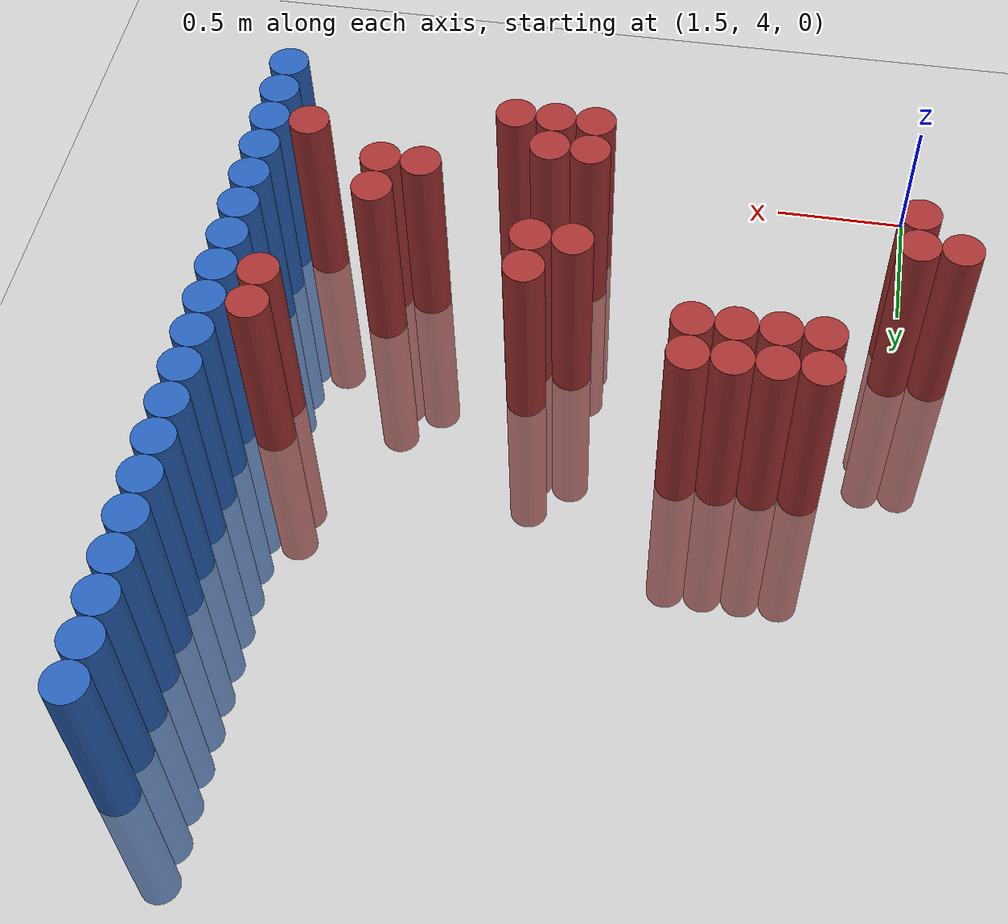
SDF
<sdf version="1.6">
 <world name="default">
  <model name="ground_plane">
   <static>1</static>
   <link name="link">
    <collision name="collision">
     <geometry><plane><normal>0 0 1</normal><size>100 100</size></plane></geometry>
     <surface><friction><ode><mu>100</mu><mu2>50</mu2></ode></friction></surface>
    </collision>
    <visual name="visual">
     <cast_shadows>0</cast_shadows>
     <geometry><plane><normal>0 0 1</normal><size>100 100</size></plane></geometry>
     <material>
      <script><uri>file://media/materials/scripts/gazebo.material</uri><name>Gazebo/Grey</name></script>
     </material>
    </visual>
   </link>
  </model>
  <model name="unit_cylinder_172">
   <static>1</static>
   <pose>3.925000 4.375000 0.000000 0.000000 0.000000 0.000000</pose>
   <link name="link">
    <inertial>
     <mass>1</mass>
     <inertia><ixx>0.145833</ixx><ixy>0</ixy><ixz>0</ixz><iyy>0.145833</iyy><iyz>0</iyz><izz>0.125</izz></inertia>
    </inertial>
    <collision name="collision">
     <geometry><cylinder><radius>0.075000</radius><length>1.5</length></cylinder></geometry>
    </collision>
    <visual name="visual">
     <geometry><cylinder><radius>0.075000</radius><length>1.5</length></cylinder></geometry>
     <material>
      <ambient>0.152000 0.379000 0.720000 1</ambient>
      <diffuse>0.152000 0.379000 0.720000 1</diffuse>
     </material>
     <material>
      <script><name>Gazebo/Grey</name><uri>file://media/materials/scripts/gazebo.material</uri></script>
     </material>
    </visual>
   </link>
  </model>
  <model name="unit_cylinder_174">
   <static>1</static>
   <pose>3.925000 4.525000 0.000000 0.000000 0.000000 0.000000</pose>
   <link name="link">
    <inertial>
     <mass>1</mass>
     <inertia><ixx>0.145833</ixx><ixy>0</ixy><ixz>0</ixz><iyy>0.145833</iyy><iyz>0</iyz><izz>0.125</izz></inertia>
    </inertial>
    <collision name="collision">
     <geometry><cylinder><radius>0.075000</radius><length>1.5</length></cylinder></geometry>
    </collision>
    <visual name="visual">
     <geometry><cylinder><radius>0.075000</radius><length>1.5</length></cylinder></geometry>
     <material>
      <ambient>0.152000 0.379000 0.720000 1</ambient>
      <diffuse>0.152000 0.379000 0.720000 1</diffuse>
     </material>
     <material>
      <script><name>Gazebo/Grey</name><uri>file://media/materials/scripts/gazebo.material</uri></script>
     </material>
    </visual>
   </link>
  </model>
  <model name="unit_cylinder_176">
   <static>1</static>
   <pose>3.925000 4.675000 0.000000 0.000000 0.000000 0.000000</pose>
   <link name="link">
    <inertial>
     <mass>1</mass>
     <inertia><ixx>0.145833</ixx><ixy>0</ixy><ixz>0</ixz><iyy>0.145833</iyy><iyz>0</iyz><izz>0.125</izz></inertia>
    </inertial>
    <collision name="collision">
     <geometry><cylinder><radius>0.075000</radius><length>1.5</length></cylinder></geometry>
    </collision>
    <visual name="visual">
     <geometry><cylinder><radius>0.075000</radius><length>1.5</length></cylinder></geometry>
     <material>
      <ambient>0.152000 0.379000 0.720000 1</ambient>
      <diffuse>0.152000 0.379000 0.720000 1</diffuse>
     </material>
     <material>
      <script><name>Gazebo/Grey</name><uri>file://media/materials/scripts/gazebo.material</uri></script>
     </material>
    </visual>
   </link>
  </model>
  <model name="unit_cylinder_178">
   <static>1</static>
   <pose>3.925000 4.825000 0.000000 0.000000 0.000000 0.000000</pose>
   <link name="link">
    <inertial>
     <mass>1</mass>
     <inertia><ixx>0.145833</ixx><ixy>0</ixy><ixz>0</ixz><iyy>0.145833</iyy><iyz>0</iyz><izz>0.125</izz></inertia>
    </inertial>
    <collision name="collision">
     <geometry><cylinder><radius>0.075000</radius><length>1.5</length></cylinder></geometry>
    </collision>
    <visual name="visual">
     <geometry><cylinder><radius>0.075000</radius><length>1.5</length></cylinder></geometry>
     <material>
      <ambient>0.152000 0.379000 0.720000 1</ambient>
      <diffuse>0.152000 0.379000 0.720000 1</diffuse>
     </material>
     <material>
      <script><name>Gazebo/Grey</name><uri>file://media/materials/scripts/gazebo.material</uri></script>
     </material>
    </visual>
   </link>
  </model>
  <model name="unit_cylinder_180">
   <static>1</static>
   <pose>3.925000 4.975000 0.000000 0.000000 0.000000 0.000000</pose>
   <link name="link">
    <inertial>
     <mass>1</mass>
     <inertia><ixx>0.145833</ixx><ixy>0</ixy><ixz>0</ixz><iyy>0.145833</iyy><iyz>0</iyz><izz>0.125</izz></inertia>
    </inertial>
    <collision name="collision">
     <geometry><cylinder><radius>0.075000</radius><length>1.5</length></cylinder></geometry>
    </collision>
    <visual name="visual">
     <geometry><cylinder><radius>0.075000</radius><length>1.5</length></cylinder></geometry>
     <material>
      <ambient>0.152000 0.379000 0.720000 1</ambient>
      <diffuse>0.152000 0.379000 0.720000 1</diffuse>
     </material>
     <material>
      <script><name>Gazebo/Grey</name><uri>file://media/materials/scripts/gazebo.material</uri></script>
     </material>
    </visual>
   </link>
  </model>
  <model name="unit_cylinder_182">
   <static>1</static>
   <pose>3.925000 5.125000 0.000000 0.000000 0.000000 0.000000</pose>
   <link name="link">
    <inertial>
     <mass>1</mass>
     <inertia><ixx>0.145833</ixx><ixy>0</ixy><ixz>0</ixz><iyy>0.145833</iyy><iyz>0</iyz><izz>0.125</izz></inertia>
    </inertial>
    <collision name="collision">
     <geometry><cylinder><radius>0.075000</radius><length>1.5</length></cylinder></geometry>
    </collision>
    <visual name="visual">
     <geometry><cylinder><radius>0.075000</radius><length>1.5</length></cylinder></geometry>
     <material>
      <ambient>0.152000 0.379000 0.720000 1</ambient>
      <diffuse>0.152000 0.379000 0.720000 1</diffuse>
     </material>
     <material>
      <script><name>Gazebo/Grey</name><uri>file://media/materials/scripts/gazebo.material</uri></script>
     </material>
    </visual>
   </link>
  </model>
  <model name="unit_cylinder_184">
   <static>1</static>
   <pose>3.925000 5.275000 0.000000 0.000000 0.000000 0.000000</pose>
   <link name="link">
    <inertial>
     <mass>1</mass>
     <inertia><ixx>0.145833</ixx><ixy>0</ixy><ixz>0</ixz><iyy>0.145833</iyy><iyz>0</iyz><izz>0.125</izz></inertia>
    </inertial>
    <collision name="collision">
     <geometry><cylinder><radius>0.075000</radius><length>1.5</length></cylinder></geometry>
    </collision>
    <visual name="visual">
     <geometry><cylinder><radius>0.075000</radius><length>1.5</length></cylinder></geometry>
     <material>
      <ambient>0.152000 0.379000 0.720000 1</ambient>
      <diffuse>0.152000 0.379000 0.720000 1</diffuse>
     </material>
     <material>
      <script><name>Gazebo/Grey</name><uri>file://media/materials/scripts/gazebo.material</uri></script>
     </material>
    </visual>
   </link>
  </model>
  <model name="unit_cylinder_186">
   <static>1</static>
   <pose>3.925000 5.425000 0.000000 0.000000 0.000000 0.000000</pose>
   <link name="link">
    <inertial>
     <mass>1</mass>
     <inertia><ixx>0.145833</ixx><ixy>0</ixy><ixz>0</ixz><iyy>0.145833</iyy><iyz>0</iyz><izz>0.125</izz></inertia>
    </inertial>
    <collision name="collision">
     <geometry><cylinder><radius>0.075000</radius><length>1.5</length></cylinder></geometry>
    </collision>
    <visual name="visual">
     <geometry><cylinder><radius>0.075000</radius><length>1.5</length></cylinder></geometry>
     <material>
      <ambient>0.152000 0.379000 0.720000 1</ambient>
      <diffuse>0.152000 0.379000 0.720000 1</diffuse>
     </material>
     <material>
      <script><name>Gazebo/Grey</name><uri>file://media/materials/scripts/gazebo.material</uri></script>
     </material>
    </visual>
   </link>
  </model>
  <model name="unit_cylinder_188">
   <static>1</static>
   <pose>3.925000 5.575000 0.000000 0.000000 0.000000 0.000000</pose>
   <link name="link">
    <inertial>
     <mass>1</mass>
     <inertia><ixx>0.145833</ixx><ixy>0</ixy><ixz>0</ixz><iyy>0.145833</iyy><iyz>0</iyz><izz>0.125</izz></inertia>
    </inertial>
    <collision name="collision">
     <geometry><cylinder><radius>0.075000</radius><length>1.5</length></cylinder></geometry>
    </collision>
    <visual name="visual">
     <geometry><cylinder><radius>0.075000</radius><length>1.5</length></cylinder></geometry>
     <material>
      <ambient>0.152000 0.379000 0.720000 1</ambient>
      <diffuse>0.152000 0.379000 0.720000 1</diffuse>
     </material>
     <material>
      <script><name>Gazebo/Grey</name><uri>file://media/materials/scripts/gazebo.material</uri></script>
     </material>
    </visual>
   </link>
  </model>
  <model name="unit_cylinder_190">
   <static>1</static>
   <pose>3.925000 5.725000 0.000000 0.000000 0.000000 0.000000</pose>
   <link name="link">
    <inertial>
     <mass>1</mass>
     <inertia><ixx>0.145833</ixx><ixy>0</ixy><ixz>0</ixz><iyy>0.145833</iyy><iyz>0</iyz><izz>0.125</izz></inertia>
    </inertial>
    <collision name="collision">
     <geometry><cylinder><radius>0.075000</radius><length>1.5</length></cylinder></geometry>
    </collision>
    <visual name="visual">
     <geometry><cylinder><radius>0.075000</radius><length>1.5</length></cylinder></geometry>
     <material>
      <ambient>0.152000 0.379000 0.720000 1</ambient>
      <diffuse>0.152000 0.379000 0.720000 1</diffuse>
     </material>
     <material>
      <script><name>Gazebo/Grey</name><uri>file://media/materials/scripts/gazebo.material</uri></script>
     </material>
    </visual>
   </link>
  </model>
  <model name="unit_cylinder_192">
   <static>1</static>
   <pose>3.925000 5.875000 0.000000 0.000000 0.000000 0.000000</pose>
   <link name="link">
    <inertial>
     <mass>1</mass>
     <inertia><ixx>0.145833</ixx><ixy>0</ixy><ixz>0</ixz><iyy>0.145833</iyy><iyz>0</iyz><izz>0.125</izz></inertia>
    </inertial>
    <collision name="collision">
     <geometry><cylinder><radius>0.075000</radius><length>1.5</length></cylinder></geometry>
    </collision>
    <visual name="visual">
     <geometry><cylinder><radius>0.075000</radius><length>1.5</length></cylinder></geometry>
     <material>
      <ambient>0.152000 0.379000 0.720000 1</ambient>
      <diffuse>0.152000 0.379000 0.720000 1</diffuse>
     </material>
     <material>
      <script><name>Gazebo/Grey</name><uri>file://media/materials/scripts/gazebo.material</uri></script>
     </material>
    </visual>
   </link>
  </model>
  <model name="unit_cylinder_194">
   <static>1</static>
   <pose>3.925000 6.025000 0.000000 0.000000 0.000000 0.000000</pose>
   <link name="link">
    <inertial>
     <mass>1</mass>
     <inertia><ixx>0.145833</ixx><ixy>0</ixy><ixz>0</ixz><iyy>0.145833</iyy><iyz>0</iyz><izz>0.125</izz></inertia>
    </inertial>
    <collision name="collision">
     <geometry><cylinder><radius>0.075000</radius><length>1.5</length></cylinder></geometry>
    </collision>
    <visual name="visual">
     <geometry><cylinder><radius>0.075000</radius><length>1.5</length></cylinder></geometry>
     <material>
      <ambient>0.152000 0.379000 0.720000 1</ambient>
      <diffuse>0.152000 0.379000 0.720000 1</diffuse>
     </material>
     <material>
      <script><name>Gazebo/Grey</name><uri>file://media/materials/scripts/gazebo.material</uri></script>
     </material>
    </visual>
   </link>
  </model>
  <model name="unit_cylinder_196">
   <static>1</static>
   <pose>3.925000 6.175000 0.000000 0.000000 0.000000 0.000000</pose>
   <link name="link">
    <inertial>
     <mass>1</mass>
     <inertia><ixx>0.145833</ixx><ixy>0</ixy><ixz>0</ixz><iyy>0.145833</iyy><iyz>0</iyz><izz>0.125</izz></inertia>
    </inertial>
    <collision name="collision">
     <geometry><cylinder><radius>0.075000</radius><length>1.5</length></cylinder></geometry>
    </collision>
    <visual name="visual">
     <geometry><cylinder><radius>0.075000</radius><length>1.5</length></cylinder></geometry>
     <material>
      <ambient>0.152000 0.379000 0.720000 1</ambient>
      <diffuse>0.152000 0.379000 0.720000 1</diffuse>
     </material>
     <material>
      <script><name>Gazebo/Grey</name><uri>file://media/materials/scripts/gazebo.material</uri></script>
     </material>
    </visual>
   </link>
  </model>
  <model name="unit_cylinder_198">
   <static>1</static>
   <pose>3.925000 6.325000 0.000000 0.000000 0.000000 0.000000</pose>
   <link name="link">
    <inertial>
     <mass>1</mass>
     <inertia><ixx>0.145833</ixx><ixy>0</ixy><ixz>0</ixz><iyy>0.145833</iyy><iyz>0</iyz><izz>0.125</izz></inertia>
    </inertial>
    <collision name="collision">
     <geometry><cylinder><radius>0.075000</radius><length>1.5</length></cylinder></geometry>
    </collision>
    <visual name="visual">
     <geometry><cylinder><radius>0.075000</radius><length>1.5</length></cylinder></geometry>
     <material>
      <ambient>0.152000 0.379000 0.720000 1</ambient>
      <diffuse>0.152000 0.379000 0.720000 1</diffuse>
     </material>
     <material>
      <script><name>Gazebo/Grey</name><uri>file://media/materials/scripts/gazebo.material</uri></script>
     </material>
    </visual>
   </link>
  </model>
  <model name="unit_cylinder_200">
   <static>1</static>
   <pose>3.925000 6.475000 0.000000 0.000000 0.000000 0.000000</pose>
   <link name="link">
    <inertial>
     <mass>1</mass>
     <inertia><ixx>0.145833</ixx><ixy>0</ixy><ixz>0</ixz><iyy>0.145833</iyy><iyz>0</iyz><izz>0.125</izz></inertia>
    </inertial>
    <collision name="collision">
     <geometry><cylinder><radius>0.075000</radius><length>1.5</length></cylinder></geometry>
    </collision>
    <visual name="visual">
     <geometry><cylinder><radius>0.075000</radius><length>1.5</length></cylinder></geometry>
     <material>
      <ambient>0.152000 0.379000 0.720000 1</ambient>
      <diffuse>0.152000 0.379000 0.720000 1</diffuse>
     </material>
     <material>
      <script><name>Gazebo/Grey</name><uri>file://media/materials/scripts/gazebo.material</uri></script>
     </material>
    </visual>
   </link>
  </model>
  <model name="unit_cylinder_202">
   <static>1</static>
   <pose>3.925000 6.625000 0.000000 0.000000 0.000000 0.000000</pose>
   <link name="link">
    <inertial>
     <mass>1</mass>
     <inertia><ixx>0.145833</ixx><ixy>0</ixy><ixz>0</ixz><iyy>0.145833</iyy><iyz>0</iyz><izz>0.125</izz></inertia>
    </inertial>
    <collision name="collision">
     <geometry><cylinder><radius>0.075000</radius><length>1.5</length></cylinder></geometry>
    </collision>
    <visual name="visual">
     <geometry><cylinder><radius>0.075000</radius><length>1.5</length></cylinder></geometry>
     <material>
      <ambient>0.152000 0.379000 0.720000 1</ambient>
      <diffuse>0.152000 0.379000 0.720000 1</diffuse>
     </material>
     <material>
      <script><name>Gazebo/Grey</name><uri>file://media/materials/scripts/gazebo.material</uri></script>
     </material>
    </visual>
   </link>
  </model>
  <model name="unit_cylinder_204">
   <static>1</static>
   <pose>3.925000 6.775000 0.000000 0.000000 0.000000 0.000000</pose>
   <link name="link">
    <inertial>
     <mass>1</mass>
     <inertia><ixx>0.145833</ixx><ixy>0</ixy><ixz>0</ixz><iyy>0.145833</iyy><iyz>0</iyz><izz>0.125</izz></inertia>
    </inertial>
    <collision name="collision">
     <geometry><cylinder><radius>0.075000</radius><length>1.5</length></cylinder></geometry>
    </collision>
    <visual name="visual">
     <geometry><cylinder><radius>0.075000</radius><length>1.5</length></cylinder></geometry>
     <material>
      <ambient>0.152000 0.379000 0.720000 1</ambient>
      <diffuse>0.152000 0.379000 0.720000 1</diffuse>
     </material>
     <material>
      <script><name>Gazebo/Grey</name><uri>file://media/materials/scripts/gazebo.material</uri></script>
     </material>
    </visual>
   </link>
  </model>
  <model name="unit_cylinder_206">
   <static>1</static>
   <pose>3.925000 6.925000 0.000000 0.000000 0.000000 0.000000</pose>
   <link name="link">
    <inertial>
     <mass>1</mass>
     <inertia><ixx>0.145833</ixx><ixy>0</ixy><ixz>0</ixz><iyy>0.145833</iyy><iyz>0</iyz><izz>0.125</izz></inertia>
    </inertial>
    <collision name="collision">
     <geometry><cylinder><radius>0.075000</radius><length>1.5</length></cylinder></geometry>
    </collision>
    <visual name="visual">
     <geometry><cylinder><radius>0.075000</radius><length>1.5</length></cylinder></geometry>
     <material>
      <ambient>0.152000 0.379000 0.720000 1</ambient>
      <diffuse>0.152000 0.379000 0.720000 1</diffuse>
     </material>
     <material>
      <script><name>Gazebo/Grey</name><uri>file://media/materials/scripts/gazebo.material</uri></script>
     </material>
    </visual>
   </link>
  </model>
  <model name="unit_cylinder_428">
   <static>1</static>
   <pose>1.375000 4.825000 0.000000 0.000000 0.000000 0.000000</pose>
   <link name="link">
    <inertial>
     <mass>1</mass>
     <inertia><ixx>0.145833</ixx><ixy>0</ixy><ixz>0</ixz><iyy>0.145833</iyy><iyz>0</iyz><izz>0.125</izz></inertia>
    </inertial>
    <collision name="collision">
     <geometry><cylinder><radius>0.075000</radius><length>1.5</length></cylinder></geometry>
    </collision>
    <visual name="visual">
     <geometry><cylinder><radius>0.075000</radius><length>1.5</length></cylinder></geometry>
     <material>
      <ambient>0.648000 0.192000 0.192000 1</ambient>
      <diffuse>0.648000 0.192000 0.192000 1</diffuse>
     </material>
     <material>
      <script><name>Gazebo/Grey</name><uri>file://media/materials/scripts/gazebo.material</uri></script>
     </material>
    </visual>
   </link>
  </model>
  <model name="unit_cylinder_436">
   <static>1</static>
   <pose>1.525000 4.675000 0.000000 0.000000 0.000000 0.000000</pose>
   <link name="link">
    <inertial>
     <mass>1</mass>
     <inertia><ixx>0.145833</ixx><ixy>0</ixy><ixz>0</ixz><iyy>0.145833</iyy><iyz>0</iyz><izz>0.125</izz></inertia>
    </inertial>
    <collision name="collision">
     <geometry><cylinder><radius>0.075000</radius><length>1.5</length></cylinder></geometry>
    </collision>
    <visual name="visual">
     <geometry><cylinder><radius>0.075000</radius><length>1.5</length></cylinder></geometry>
     <material>
      <ambient>0.648000 0.192000 0.192000 1</ambient>
      <diffuse>0.648000 0.192000 0.192000 1</diffuse>
     </material>
     <material>
      <script><name>Gazebo/Grey</name><uri>file://media/materials/scripts/gazebo.material</uri></script>
     </material>
    </visual>
   </link>
  </model>
  <model name="unit_cylinder_437">
   <static>1</static>
   <pose>1.525000 4.825000 0.000000 0.000000 0.000000 0.000000</pose>
   <link name="link">
    <inertial>
     <mass>1</mass>
     <inertia><ixx>0.145833</ixx><ixy>0</ixy><ixz>0</ixz><iyy>0.145833</iyy><iyz>0</iyz><izz>0.125</izz></inertia>
    </inertial>
    <collision name="collision">
     <geometry><cylinder><radius>0.075000</radius><length>1.5</length></cylinder></geometry>
    </collision>
    <visual name="visual">
     <geometry><cylinder><radius>0.075000</radius><length>1.5</length></cylinder></geometry>
     <material>
      <ambient>0.648000 0.192000 0.192000 1</ambient>
      <diffuse>0.648000 0.192000 0.192000 1</diffuse>
     </material>
     <material>
      <script><name>Gazebo/Grey</name><uri>file://media/materials/scripts/gazebo.material</uri></script>
     </material>
    </visual>
   </link>
  </model>
  <model name="unit_cylinder_453">
   <static>1</static>
   <pose>1.825000 5.275000 0.000000 0.000000 0.000000 0.000000</pose>
   <link name="link">
    <inertial>
     <mass>1</mass>
     <inertia><ixx>0.145833</ixx><ixy>0</ixy><ixz>0</ixz><iyy>0.145833</iyy><iyz>0</iyz><izz>0.125</izz></inertia>
    </inertial>
    <collision name="collision">
     <geometry><cylinder><radius>0.075000</radius><length>1.5</length></cylinder></geometry>
    </collision>
    <visual name="visual">
     <geometry><cylinder><radius>0.075000</radius><length>1.5</length></cylinder></geometry>
     <material>
      <ambient>0.648000 0.192000 0.192000 1</ambient>
      <diffuse>0.648000 0.192000 0.192000 1</diffuse>
     </material>
     <material>
      <script><name>Gazebo/Grey</name><uri>file://media/materials/scripts/gazebo.material</uri></script>
     </material>
    </visual>
   </link>
  </model>
  <model name="unit_cylinder_454">
   <static>1</static>
   <pose>1.825000 5.425000 0.000000 0.000000 0.000000 0.000000</pose>
   <link name="link">
    <inertial>
     <mass>1</mass>
     <inertia><ixx>0.145833</ixx><ixy>0</ixy><ixz>0</ixz><iyy>0.145833</iyy><iyz>0</iyz><izz>0.125</izz></inertia>
    </inertial>
    <collision name="collision">
     <geometry><cylinder><radius>0.075000</radius><length>1.5</length></cylinder></geometry>
    </collision>
    <visual name="visual">
     <geometry><cylinder><radius>0.075000</radius><length>1.5</length></cylinder></geometry>
     <material>
      <ambient>0.648000 0.192000 0.192000 1</ambient>
      <diffuse>0.648000 0.192000 0.192000 1</diffuse>
     </material>
     <material>
      <script><name>Gazebo/Grey</name><uri>file://media/materials/scripts/gazebo.material</uri></script>
     </material>
    </visual>
   </link>
  </model>
  <model name="unit_cylinder_466">
   <static>1</static>
   <pose>1.975000 5.275000 0.000000 0.000000 0.000000 0.000000</pose>
   <link name="link">
    <inertial>
     <mass>1</mass>
     <inertia><ixx>0.145833</ixx><ixy>0</ixy><ixz>0</ixz><iyy>0.145833</iyy><iyz>0</iyz><izz>0.125</izz></inertia>
    </inertial>
    <collision name="collision">
     <geometry><cylinder><radius>0.075000</radius><length>1.5</length></cylinder></geometry>
    </collision>
    <visual name="visual">
     <geometry><cylinder><radius>0.075000</radius><length>1.5</length></cylinder></geometry>
     <material>
      <ambient>0.648000 0.192000 0.192000 1</ambient>
      <diffuse>0.648000 0.192000 0.192000 1</diffuse>
     </material>
     <material>
      <script><name>Gazebo/Grey</name><uri>file://media/materials/scripts/gazebo.material</uri></script>
     </material>
    </visual>
   </link>
  </model>
  <model name="unit_cylinder_467">
   <static>1</static>
   <pose>1.975000 5.425000 0.000000 0.000000 0.000000 0.000000</pose>
   <link name="link">
    <inertial>
     <mass>1</mass>
     <inertia><ixx>0.145833</ixx><ixy>0</ixy><ixz>0</ixz><iyy>0.145833</iyy><iyz>0</iyz><izz>0.125</izz></inertia>
    </inertial>
    <collision name="collision">
     <geometry><cylinder><radius>0.075000</radius><length>1.5</length></cylinder></geometry>
    </collision>
    <visual name="visual">
     <geometry><cylinder><radius>0.075000</radius><length>1.5</length></cylinder></geometry>
     <material>
      <ambient>0.648000 0.192000 0.192000 1</ambient>
      <diffuse>0.648000 0.192000 0.192000 1</diffuse>
     </material>
     <material>
      <script><name>Gazebo/Grey</name><uri>file://media/materials/scripts/gazebo.material</uri></script>
     </material>
    </visual>
   </link>
  </model>
  <model name="unit_cylinder_476">
   <static>1</static>
   <pose>2.125000 5.275000 0.000000 0.000000 0.000000 0.000000</pose>
   <link name="link">
    <inertial>
     <mass>1</mass>
     <inertia><ixx>0.145833</ixx><ixy>0</ixy><ixz>0</ixz><iyy>0.145833</iyy><iyz>0</iyz><izz>0.125</izz></inertia>
    </inertial>
    <collision name="collision">
     <geometry><cylinder><radius>0.075000</radius><length>1.5</length></cylinder></geometry>
    </collision>
    <visual name="visual">
     <geometry><cylinder><radius>0.075000</radius><length>1.5</length></cylinder></geometry>
     <material>
      <ambient>0.648000 0.192000 0.192000 1</ambient>
      <diffuse>0.648000 0.192000 0.192000 1</diffuse>
     </material>
     <material>
      <script><name>Gazebo/Grey</name><uri>file://media/materials/scripts/gazebo.material</uri></script>
     </material>
    </visual>
   </link>
  </model>
  <model name="unit_cylinder_477">
   <static>1</static>
   <pose>2.125000 5.425000 0.000000 0.000000 0.000000 0.000000</pose>
   <link name="link">
    <inertial>
     <mass>1</mass>
     <inertia><ixx>0.145833</ixx><ixy>0</ixy><ixz>0</ixz><iyy>0.145833</iyy><iyz>0</iyz><izz>0.125</izz></inertia>
    </inertial>
    <collision name="collision">
     <geometry><cylinder><radius>0.075000</radius><length>1.5</length></cylinder></geometry>
    </collision>
    <visual name="visual">
     <geometry><cylinder><radius>0.075000</radius><length>1.5</length></cylinder></geometry>
     <material>
      <ambient>0.648000 0.192000 0.192000 1</ambient>
      <diffuse>0.648000 0.192000 0.192000 1</diffuse>
     </material>
     <material>
      <script><name>Gazebo/Grey</name><uri>file://media/materials/scripts/gazebo.material</uri></script>
     </material>
    </visual>
   </link>
  </model>
  <model name="unit_cylinder_481">
   <static>1</static>
   <pose>2.275000 5.275000 0.000000 0.000000 0.000000 0.000000</pose>
   <link name="link">
    <inertial>
     <mass>1</mass>
     <inertia><ixx>0.145833</ixx><ixy>0</ixy><ixz>0</ixz><iyy>0.145833</iyy><iyz>0</iyz><izz>0.125</izz></inertia>
    </inertial>
    <collision name="collision">
     <geometry><cylinder><radius>0.075000</radius><length>1.5</length></cylinder></geometry>
    </collision>
    <visual name="visual">
     <geometry><cylinder><radius>0.075000</radius><length>1.5</length></cylinder></geometry>
     <material>
      <ambient>0.648000 0.192000 0.192000 1</ambient>
      <diffuse>0.648000 0.192000 0.192000 1</diffuse>
     </material>
     <material>
      <script><name>Gazebo/Grey</name><uri>file://media/materials/scripts/gazebo.material</uri></script>
     </material>
    </visual>
   </link>
  </model>
  <model name="unit_cylinder_482">
   <static>1</static>
   <pose>2.275000 5.425000 0.000000 0.000000 0.000000 0.000000</pose>
   <link name="link">
    <inertial>
     <mass>1</mass>
     <inertia><ixx>0.145833</ixx><ixy>0</ixy><ixz>0</ixz><iyy>0.145833</iyy><iyz>0</iyz><izz>0.125</izz></inertia>
    </inertial>
    <collision name="collision">
     <geometry><cylinder><radius>0.075000</radius><length>1.5</length></cylinder></geometry>
    </collision>
    <visual name="visual">
     <geometry><cylinder><radius>0.075000</radius><length>1.5</length></cylinder></geometry>
     <material>
      <ambient>0.648000 0.192000 0.192000 1</ambient>
      <diffuse>0.648000 0.192000 0.192000 1</diffuse>
     </material>
     <material>
      <script><name>Gazebo/Grey</name><uri>file://media/materials/scripts/gazebo.material</uri></script>
     </material>
    </visual>
   </link>
  </model>
  <model name="unit_cylinder_512">
   <static>1</static>
   <pose>2.725000 4.375000 0.000000 0.000000 0.000000 0.000000</pose>
   <link name="link">
    <inertial>
     <mass>1</mass>
     <inertia><ixx>0.145833</ixx><ixy>0</ixy><ixz>0</ixz><iyy>0.145833</iyy><iyz>0</iyz><izz>0.125</izz></inertia>
    </inertial>
    <collision name="collision">
     <geometry><cylinder><radius>0.075000</radius><length>1.5</length></cylinder></geometry>
    </collision>
    <visual name="visual">
     <geometry><cylinder><radius>0.075000</radius><length>1.5</length></cylinder></geometry>
     <material>
      <ambient>0.648000 0.192000 0.192000 1</ambient>
      <diffuse>0.648000 0.192000 0.192000 1</diffuse>
     </material>
     <material>
      <script><name>Gazebo/Grey</name><uri>file://media/materials/scripts/gazebo.material</uri></script>
     </material>
    </visual>
   </link>
  </model>
  <model name="unit_cylinder_513">
   <static>1</static>
   <pose>2.725000 4.525000 0.000000 0.000000 0.000000 0.000000</pose>
   <link name="link">
    <inertial>
     <mass>1</mass>
     <inertia><ixx>0.145833</ixx><ixy>0</ixy><ixz>0</ixz><iyy>0.145833</iyy><iyz>0</iyz><izz>0.125</izz></inertia>
    </inertial>
    <collision name="collision">
     <geometry><cylinder><radius>0.075000</radius><length>1.5</length></cylinder></geometry>
    </collision>
    <visual name="visual">
     <geometry><cylinder><radius>0.075000</radius><length>1.5</length></cylinder></geometry>
     <material>
      <ambient>0.648000 0.192000 0.192000 1</ambient>
      <diffuse>0.648000 0.192000 0.192000 1</diffuse>
     </material>
     <material>
      <script><name>Gazebo/Grey</name><uri>file://media/materials/scripts/gazebo.material</uri></script>
     </material>
    </visual>
   </link>
  </model>
  <model name="unit_cylinder_514">
   <static>1</static>
   <pose>2.725000 4.975000 0.000000 0.000000 0.000000 0.000000</pose>
   <link name="link">
    <inertial>
     <mass>1</mass>
     <inertia><ixx>0.145833</ixx><ixy>0</ixy><ixz>0</ixz><iyy>0.145833</iyy><iyz>0</iyz><izz>0.125</izz></inertia>
    </inertial>
    <collision name="collision">
     <geometry><cylinder><radius>0.075000</radius><length>1.5</length></cylinder></geometry>
    </collision>
    <visual name="visual">
     <geometry><cylinder><radius>0.075000</radius><length>1.5</length></cylinder></geometry>
     <material>
      <ambient>0.648000 0.192000 0.192000 1</ambient>
      <diffuse>0.648000 0.192000 0.192000 1</diffuse>
     </material>
     <material>
      <script><name>Gazebo/Grey</name><uri>file://media/materials/scripts/gazebo.material</uri></script>
     </material>
    </visual>
   </link>
  </model>
  <model name="unit_cylinder_522">
   <static>1</static>
   <pose>2.875000 4.375000 0.000000 0.000000 0.000000 0.000000</pose>
   <link name="link">
    <inertial>
     <mass>1</mass>
     <inertia><ixx>0.145833</ixx><ixy>0</ixy><ixz>0</ixz><iyy>0.145833</iyy><iyz>0</iyz><izz>0.125</izz></inertia>
    </inertial>
    <collision name="collision">
     <geometry><cylinder><radius>0.075000</radius><length>1.5</length></cylinder></geometry>
    </collision>
    <visual name="visual">
     <geometry><cylinder><radius>0.075000</radius><length>1.5</length></cylinder></geometry>
     <material>
      <ambient>0.648000 0.192000 0.192000 1</ambient>
      <diffuse>0.648000 0.192000 0.192000 1</diffuse>
     </material>
     <material>
      <script><name>Gazebo/Grey</name><uri>file://media/materials/scripts/gazebo.material</uri></script>
     </material>
    </visual>
   </link>
  </model>
  <model name="unit_cylinder_523">
   <static>1</static>
   <pose>2.875000 4.525000 0.000000 0.000000 0.000000 0.000000</pose>
   <link name="link">
    <inertial>
     <mass>1</mass>
     <inertia><ixx>0.145833</ixx><ixy>0</ixy><ixz>0</ixz><iyy>0.145833</iyy><iyz>0</iyz><izz>0.125</izz></inertia>
    </inertial>
    <collision name="collision">
     <geometry><cylinder><radius>0.075000</radius><length>1.5</length></cylinder></geometry>
    </collision>
    <visual name="visual">
     <geometry><cylinder><radius>0.075000</radius><length>1.5</length></cylinder></geometry>
     <material>
      <ambient>0.648000 0.192000 0.192000 1</ambient>
      <diffuse>0.648000 0.192000 0.192000 1</diffuse>
     </material>
     <material>
      <script><name>Gazebo/Grey</name><uri>file://media/materials/scripts/gazebo.material</uri></script>
     </material>
    </visual>
   </link>
  </model>
  <model name="unit_cylinder_524">
   <static>1</static>
   <pose>2.875000 4.975000 0.000000 0.000000 0.000000 0.000000</pose>
   <link name="link">
    <inertial>
     <mass>1</mass>
     <inertia><ixx>0.145833</ixx><ixy>0</ixy><ixz>0</ixz><iyy>0.145833</iyy><iyz>0</iyz><izz>0.125</izz></inertia>
    </inertial>
    <collision name="collision">
     <geometry><cylinder><radius>0.075000</radius><length>1.5</length></cylinder></geometry>
    </collision>
    <visual name="visual">
     <geometry><cylinder><radius>0.075000</radius><length>1.5</length></cylinder></geometry>
     <material>
      <ambient>0.648000 0.192000 0.192000 1</ambient>
      <diffuse>0.648000 0.192000 0.192000 1</diffuse>
     </material>
     <material>
      <script><name>Gazebo/Grey</name><uri>file://media/materials/scripts/gazebo.material</uri></script>
     </material>
    </visual>
   </link>
  </model>
  <model name="unit_cylinder_525">
   <static>1</static>
   <pose>2.875000 5.125000 0.000000 0.000000 0.000000 0.000000</pose>
   <link name="link">
    <inertial>
     <mass>1</mass>
     <inertia><ixx>0.145833</ixx><ixy>0</ixy><ixz>0</ixz><iyy>0.145833</iyy><iyz>0</iyz><izz>0.125</izz></inertia>
    </inertial>
    <collision name="collision">
     <geometry><cylinder><radius>0.075000</radius><length>1.5</length></cylinder></geometry>
    </collision>
    <visual name="visual">
     <geometry><cylinder><radius>0.075000</radius><length>1.5</length></cylinder></geometry>
     <material>
      <ambient>0.648000 0.192000 0.192000 1</ambient>
      <diffuse>0.648000 0.192000 0.192000 1</diffuse>
     </material>
     <material>
      <script><name>Gazebo/Grey</name><uri>file://media/materials/scripts/gazebo.material</uri></script>
     </material>
    </visual>
   </link>
  </model>
  <model name="unit_cylinder_536">
   <static>1</static>
   <pose>3.025000 4.375000 0.000000 0.000000 0.000000 0.000000</pose>
   <link name="link">
    <inertial>
     <mass>1</mass>
     <inertia><ixx>0.145833</ixx><ixy>0</ixy><ixz>0</ixz><iyy>0.145833</iyy><iyz>0</iyz><izz>0.125</izz></inertia>
    </inertial>
    <collision name="collision">
     <geometry><cylinder><radius>0.075000</radius><length>1.5</length></cylinder></geometry>
    </collision>
    <visual name="visual">
     <geometry><cylinder><radius>0.075000</radius><length>1.5</length></cylinder></geometry>
     <material>
      <ambient>0.648000 0.192000 0.192000 1</ambient>
      <diffuse>0.648000 0.192000 0.192000 1</diffuse>
     </material>
     <material>
      <script><name>Gazebo/Grey</name><uri>file://media/materials/scripts/gazebo.material</uri></script>
     </material>
    </visual>
   </link>
  </model>
  <model name="unit_cylinder_562">
   <static>1</static>
   <pose>3.325000 4.675000 0.000000 0.000000 0.000000 0.000000</pose>
   <link name="link">
    <inertial>
     <mass>1</mass>
     <inertia><ixx>0.145833</ixx><ixy>0</ixy><ixz>0</ixz><iyy>0.145833</iyy><iyz>0</iyz><izz>0.125</izz></inertia>
    </inertial>
    <collision name="collision">
     <geometry><cylinder><radius>0.075000</radius><length>1.5</length></cylinder></geometry>
    </collision>
    <visual name="visual">
     <geometry><cylinder><radius>0.075000</radius><length>1.5</length></cylinder></geometry>
     <material>
      <ambient>0.648000 0.192000 0.192000 1</ambient>
      <diffuse>0.648000 0.192000 0.192000 1</diffuse>
     </material>
     <material>
      <script><name>Gazebo/Grey</name><uri>file://media/materials/scripts/gazebo.material</uri></script>
     </material>
    </visual>
   </link>
  </model>
  <model name="unit_cylinder_577">
   <static>1</static>
   <pose>3.475000 4.675000 0.000000 0.000000 0.000000 0.000000</pose>
   <link name="link">
    <inertial>
     <mass>1</mass>
     <inertia><ixx>0.145833</ixx><ixy>0</ixy><ixz>0</ixz><iyy>0.145833</iyy><iyz>0</iyz><izz>0.125</izz></inertia>
    </inertial>
    <collision name="collision">
     <geometry><cylinder><radius>0.075000</radius><length>1.5</length></cylinder></geometry>
    </collision>
    <visual name="visual">
     <geometry><cylinder><radius>0.075000</radius><length>1.5</length></cylinder></geometry>
     <material>
      <ambient>0.648000 0.192000 0.192000 1</ambient>
      <diffuse>0.648000 0.192000 0.192000 1</diffuse>
     </material>
     <material>
      <script><name>Gazebo/Grey</name><uri>file://media/materials/scripts/gazebo.material</uri></script>
     </material>
    </visual>
   </link>
  </model>
  <model name="unit_cylinder_578">
   <static>1</static>
   <pose>3.475000 4.825000 0.000000 0.000000 0.000000 0.000000</pose>
   <link name="link">
    <inertial>
     <mass>1</mass>
     <inertia><ixx>0.145833</ixx><ixy>0</ixy><ixz>0</ixz><iyy>0.145833</iyy><iyz>0</iyz><izz>0.125</izz></inertia>
    </inertial>
    <collision name="collision">
     <geometry><cylinder><radius>0.075000</radius><length>1.5</length></cylinder></geometry>
    </collision>
    <visual name="visual">
     <geometry><cylinder><radius>0.075000</radius><length>1.5</length></cylinder></geometry>
     <material>
      <ambient>0.648000 0.192000 0.192000 1</ambient>
      <diffuse>0.648000 0.192000 0.192000 1</diffuse>
     </material>
     <material>
      <script><name>Gazebo/Grey</name><uri>file://media/materials/scripts/gazebo.material</uri></script>
     </material>
    </visual>
   </link>
  </model>
  <model name="unit_cylinder_611">
   <static>1</static>
   <pose>3.775000 4.525000 0.000000 0.000000 0.000000 0.000000</pose>
   <link name="link">
    <inertial>
     <mass>1</mass>
     <inertia><ixx>0.145833</ixx><ixy>0</ixy><ixz>0</ixz><iyy>0.145833</iyy><iyz>0</iyz><izz>0.125</izz></inertia>
    </inertial>
    <collision name="collision">
     <geometry><cylinder><radius>0.075000</radius><length>1.5</length></cylinder></geometry>
    </collision>
    <visual name="visual">
     <geometry><cylinder><radius>0.075000</radius><length>1.5</length></cylinder></geometry>
     <material>
      <ambient>0.648000 0.192000 0.192000 1</ambient>
      <diffuse>0.648000 0.192000 0.192000 1</diffuse>
     </material>
     <material>
      <script><name>Gazebo/Grey</name><uri>file://media/materials/scripts/gazebo.material</uri></script>
     </material>
    </visual>
   </link>
  </model>
  <model name="unit_cylinder_612">
   <static>1</static>
   <pose>3.775000 5.275000 0.000000 0.000000 0.000000 0.000000</pose>
   <link name="link">
    <inertial>
     <mass>1</mass>
     <inertia><ixx>0.145833</ixx><ixy>0</ixy><ixz>0</ixz><iyy>0.145833</iyy><iyz>0</iyz><izz>0.125</izz></inertia>
    </inertial>
    <collision name="collision">
     <geometry><cylinder><radius>0.075000</radius><length>1.5</length></cylinder></geometry>
    </collision>
    <visual name="visual">
     <geometry><cylinder><radius>0.075000</radius><length>1.5</length></cylinder></geometry>
     <material>
      <ambient>0.648000 0.192000 0.192000 1</ambient>
      <diffuse>0.648000 0.192000 0.192000 1</diffuse>
     </material>
     <material>
      <script><name>Gazebo/Grey</name><uri>file://media/materials/scripts/gazebo.material</uri></script>
     </material>
    </visual>
   </link>
  </model>
  <model name="unit_cylinder_613">
   <static>1</static>
   <pose>3.775000 5.425000 0.000000 0.000000 0.000000 0.000000</pose>
   <link name="link">
    <inertial>
     <mass>1</mass>
     <inertia><ixx>0.145833</ixx><ixy>0</ixy><ixz>0</ixz><iyy>0.145833</iyy><iyz>0</iyz><izz>0.125</izz></inertia>
    </inertial>
    <collision name="collision">
     <geometry><cylinder><radius>0.075000</radius><length>1.5</length></cylinder></geometry>
    </collision>
    <visual name="visual">
     <geometry><cylinder><radius>0.075000</radius><length>1.5</length></cylinder></geometry>
     <material>
      <ambient>0.648000 0.192000 0.192000 1</ambient>
      <diffuse>0.648000 0.192000 0.192000 1</diffuse>
     </material>
     <material>
      <script><name>Gazebo/Grey</name><uri>file://media/materials/scripts/gazebo.material</uri></script>
     </material>
    </visual>
   </link>
  </model>
  <model name="unit_cylinder_655">
   <static>1</static>
   <pose>3.925000 4.225000 0.000000 0.000000 0.000000 0.000000</pose>
   <link name="link">
    <inertial>
     <mass>1</mass>
     <inertia><ixx>0.145833</ixx><ixy>0</ixy><ixz>0</ixz><iyy>0.145833</iyy><iyz>0</iyz><izz>0.125</izz></inertia>
    </inertial>
    <collision name="collision">
     <geometry><cylinder><radius>0.075000</radius><length>1.5</length></cylinder></geometry>
    </collision>
    <visual name="visual">
     <geometry><cylinder><radius>0.075000</radius><length>1.5</length></cylinder></geometry>
     <material>
      <ambient>0.152000 0.379000 0.720000 1</ambient>
      <diffuse>0.152000 0.379000 0.720000 1</diffuse>
     </material>
     <material>
      <script><name>Gazebo/Grey</name><uri>file://media/materials/scripts/gazebo.material</uri></script>
     </material>
    </visual>
   </link>
  </model>
  <model name="unit_cylinder_656">
   <static>1</static>
   <pose>3.925000 4.375000 0.000000 0.000000 0.000000 0.000000</pose>
   <link name="link">
    <inertial>
     <mass>1</mass>
     <inertia><ixx>0.145833</ixx><ixy>0</ixy><ixz>0</ixz><iyy>0.145833</iyy><iyz>0</iyz><izz>0.125</izz></inertia>
    </inertial>
    <collision name="collision">
     <geometry><cylinder><radius>0.075000</radius><length>1.5</length></cylinder></geometry>
    </collision>
    <visual name="visual">
     <geometry><cylinder><radius>0.075000</radius><length>1.5</length></cylinder></geometry>
     <material>
      <ambient>0.152000 0.379000 0.720000 1</ambient>
      <diffuse>0.152000 0.379000 0.720000 1</diffuse>
     </material>
     <material>
      <script><name>Gazebo/Grey</name><uri>file://media/materials/scripts/gazebo.material</uri></script>
     </material>
    </visual>
   </link>
  </model>
  <model name="unit_cylinder_657">
   <static>1</static>
   <pose>3.925000 4.525000 0.000000 0.000000 0.000000 0.000000</pose>
   <link name="link">
    <inertial>
     <mass>1</mass>
     <inertia><ixx>0.145833</ixx><ixy>0</ixy><ixz>0</ixz><iyy>0.145833</iyy><iyz>0</iyz><izz>0.125</izz></inertia>
    </inertial>
    <collision name="collision">
     <geometry><cylinder><radius>0.075000</radius><length>1.5</length></cylinder></geometry>
    </collision>
    <visual name="visual">
     <geometry><cylinder><radius>0.075000</radius><length>1.5</length></cylinder></geometry>
     <material>
      <ambient>0.152000 0.379000 0.720000 1</ambient>
      <diffuse>0.152000 0.379000 0.720000 1</diffuse>
     </material>
     <material>
      <script><name>Gazebo/Grey</name><uri>file://media/materials/scripts/gazebo.material</uri></script>
     </material>
    </visual>
   </link>
  </model>
  <model name="unit_cylinder_658">
   <static>1</static>
   <pose>3.925000 4.675000 0.000000 0.000000 0.000000 0.000000</pose>
   <link name="link">
    <inertial>
     <mass>1</mass>
     <inertia><ixx>0.145833</ixx><ixy>0</ixy><ixz>0</ixz><iyy>0.145833</iyy><iyz>0</iyz><izz>0.125</izz></inertia>
    </inertial>
    <collision name="collision">
     <geometry><cylinder><radius>0.075000</radius><length>1.5</length></cylinder></geometry>
    </collision>
    <visual name="visual">
     <geometry><cylinder><radius>0.075000</radius><length>1.5</length></cylinder></geometry>
     <material>
      <ambient>0.152000 0.379000 0.720000 1</ambient>
      <diffuse>0.152000 0.379000 0.720000 1</diffuse>
     </material>
     <material>
      <script><name>Gazebo/Grey</name><uri>file://media/materials/scripts/gazebo.material</uri></script>
     </material>
    </visual>
   </link>
  </model>
  <model name="unit_cylinder_659">
   <static>1</static>
   <pose>3.925000 4.825000 0.000000 0.000000 0.000000 0.000000</pose>
   <link name="link">
    <inertial>
     <mass>1</mass>
     <inertia><ixx>0.145833</ixx><ixy>0</ixy><ixz>0</ixz><iyy>0.145833</iyy><iyz>0</iyz><izz>0.125</izz></inertia>
    </inertial>
    <collision name="collision">
     <geometry><cylinder><radius>0.075000</radius><length>1.5</length></cylinder></geometry>
    </collision>
    <visual name="visual">
     <geometry><cylinder><radius>0.075000</radius><length>1.5</length></cylinder></geometry>
     <material>
      <ambient>0.152000 0.379000 0.720000 1</ambient>
      <diffuse>0.152000 0.379000 0.720000 1</diffuse>
     </material>
     <material>
      <script><name>Gazebo/Grey</name><uri>file://media/materials/scripts/gazebo.material</uri></script>
     </material>
    </visual>
   </link>
  </model>
  <model name="unit_cylinder_660">
   <static>1</static>
   <pose>3.925000 4.975000 0.000000 0.000000 0.000000 0.000000</pose>
   <link name="link">
    <inertial>
     <mass>1</mass>
     <inertia><ixx>0.145833</ixx><ixy>0</ixy><ixz>0</ixz><iyy>0.145833</iyy><iyz>0</iyz><izz>0.125</izz></inertia>
    </inertial>
    <collision name="collision">
     <geometry><cylinder><radius>0.075000</radius><length>1.5</length></cylinder></geometry>
    </collision>
    <visual name="visual">
     <geometry><cylinder><radius>0.075000</radius><length>1.5</length></cylinder></geometry>
     <material>
      <ambient>0.152000 0.379000 0.720000 1</ambient>
      <diffuse>0.152000 0.379000 0.720000 1</diffuse>
     </material>
     <material>
      <script><name>Gazebo/Grey</name><uri>file://media/materials/scripts/gazebo.material</uri></script>
     </material>
    </visual>
   </link>
  </model>
  <model name="unit_cylinder_661">
   <static>1</static>
   <pose>3.925000 5.125000 0.000000 0.000000 0.000000 0.000000</pose>
   <link name="link">
    <inertial>
     <mass>1</mass>
     <inertia><ixx>0.145833</ixx><ixy>0</ixy><ixz>0</ixz><iyy>0.145833</iyy><iyz>0</iyz><izz>0.125</izz></inertia>
    </inertial>
    <collision name="collision">
     <geometry><cylinder><radius>0.075000</radius><length>1.5</length></cylinder></geometry>
    </collision>
    <visual name="visual">
     <geometry><cylinder><radius>0.075000</radius><length>1.5</length></cylinder></geometry>
     <material>
      <ambient>0.152000 0.379000 0.720000 1</ambient>
      <diffuse>0.152000 0.379000 0.720000 1</diffuse>
     </material>
     <material>
      <script><name>Gazebo/Grey</name><uri>file://media/materials/scripts/gazebo.material</uri></script>
     </material>
    </visual>
   </link>
  </model>
  <model name="unit_cylinder_662">
   <static>1</static>
   <pose>3.925000 5.275000 0.000000 0.000000 0.000000 0.000000</pose>
   <link name="link">
    <inertial>
     <mass>1</mass>
     <inertia><ixx>0.145833</ixx><ixy>0</ixy><ixz>0</ixz><iyy>0.145833</iyy><iyz>0</iyz><izz>0.125</izz></inertia>
    </inertial>
    <collision name="collision">
     <geometry><cylinder><radius>0.075000</radius><length>1.5</length></cylinder></geometry>
    </collision>
    <visual name="visual">
     <geometry><cylinder><radius>0.075000</radius><length>1.5</length></cylinder></geometry>
     <material>
      <ambient>0.152000 0.379000 0.720000 1</ambient>
      <diffuse>0.152000 0.379000 0.720000 1</diffuse>
     </material>
     <material>
      <script><name>Gazebo/Grey</name><uri>file://media/materials/scripts/gazebo.material</uri></script>
     </material>
    </visual>
   </link>
  </model>
  <model name="unit_cylinder_663">
   <static>1</static>
   <pose>3.925000 5.425000 0.000000 0.000000 0.000000 0.000000</pose>
   <link name="link">
    <inertial>
     <mass>1</mass>
     <inertia><ixx>0.145833</ixx><ixy>0</ixy><ixz>0</ixz><iyy>0.145833</iyy><iyz>0</iyz><izz>0.125</izz></inertia>
    </inertial>
    <collision name="collision">
     <geometry><cylinder><radius>0.075000</radius><length>1.5</length></cylinder></geometry>
    </collision>
    <visual name="visual">
     <geometry><cylinder><radius>0.075000</radius><length>1.5</length></cylinder></geometry>
     <material>
      <ambient>0.152000 0.379000 0.720000 1</ambient>
      <diffuse>0.152000 0.379000 0.720000 1</diffuse>
     </material>
     <material>
      <script><name>Gazebo/Grey</name><uri>file://media/materials/scripts/gazebo.material</uri></script>
     </material>
    </visual>
   </link>
  </model>
 </world>
</sdf>
